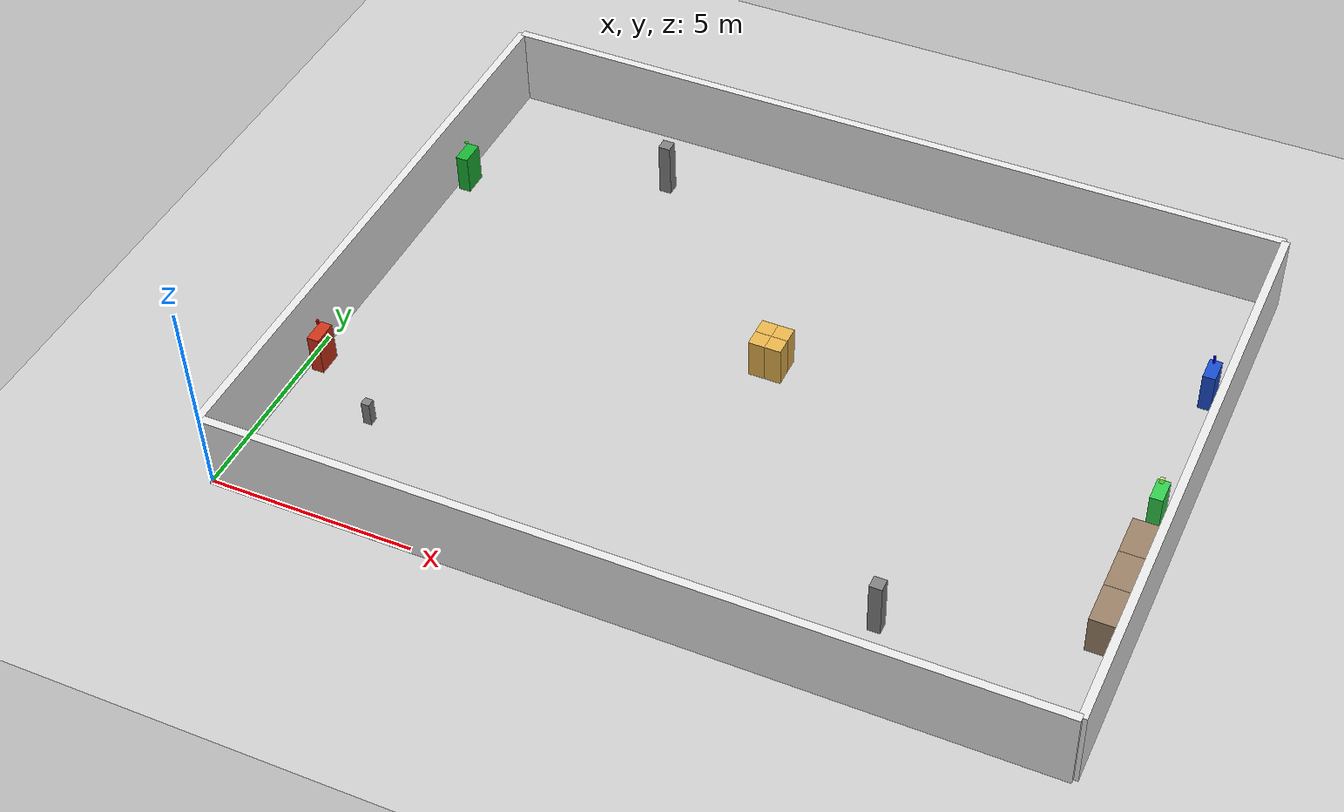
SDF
<?xml version="1.0" ?>
<sdf version="1.6">
  <world name="house">
    <physics type="ode">
      <max_step_size>0.001</max_step_size>
      <real_time_factor>1</real_time_factor>
      <real_time_update_rate>1000</real_time_update_rate>
    </physics>
    <include><uri>model://sun</uri></include>
    <include><uri>model://ground_plane</uri></include>

    <!-- 外围墙壁 20m x 15m -->
    <model name="wall_left">
      <pose>0.0 7.5 1.0 0 0 0</pose>
      <link name="link">
        <visual name="visual"><geometry><box><size>0.2 15.0 2.0</size></box></geometry><material><ambient>0.9 0.9 0.9 1</ambient></material></visual>
        <collision name="collision"><geometry><box><size>0.2 15.0 2.0</size></box></geometry></collision>
        <inertial><mass>500</mass><inertia><ixx>1</ixx><iyy>1</iyy><izz>1</izz></inertia></inertial>
      </link>
      <static>true</static>
    </model>
    <model name="wall_right">
      <pose>20.0 7.5 1.0 0 0 0</pose>
      <link name="link">
        <visual name="visual"><geometry><box><size>0.2 15.0 2.0</size></box></geometry><material><ambient>0.9 0.9 0.9 1</ambient></material></visual>
        <collision name="collision"><geometry><box><size>0.2 15.0 2.0</size></box></geometry></collision>
        <inertial><mass>500</mass><inertia><ixx>1</ixx><iyy>1</iyy><izz>1</izz></inertia></inertial>
      </link>
      <static>true</static>
    </model>
    <model name="wall_top">
      <pose>10.0 15.0 1.0 0 0 0</pose>
      <link name="link">
        <visual name="visual"><geometry><box><size>20.0 0.2 2.0</size></box></geometry><material><ambient>0.9 0.9 0.9 1</ambient></material></visual>
        <collision name="collision"><geometry><box><size>20.0 0.2 2.0</size></box></geometry></collision>
        <inertial><mass>500</mass><inertia><ixx>1</ixx><iyy>1</iyy><izz>1</izz></inertia></inertial>
      </link>
      <static>true</static>
    </model>
    <model name="wall_bottom">
      <pose>10.0 0.0 1.0 0 0 0</pose>
      <link name="link">
        <visual name="visual"><geometry><box><size>20.0 0.2 2.0</size></box></geometry><material><ambient>0.9 0.9 0.9 1</ambient></material></visual>
        <collision name="collision"><geometry><box><size>20.0 0.2 2.0</size></box></geometry></collision>
        <inertial><mass>500</mass><inertia><ixx>1</ixx><iyy>1</iyy><izz>1</izz></inertia></inertial>
      </link>
      <static>true</static>
    </model>

    <!-- ========== 靠墙取物桌 (物体放置处) ========== -->
    <!-- 左墙药品桌 y=4，红色桌面 -->
    <model name="table_left_medicine">
      <pose>0.5 4.0 0.75 0 0 0</pose>
      <link name="link">
        <visual name="visual"><geometry><box><size>0.3 0.6 1.0</size></box></geometry><material><ambient>0.8 0.2 0.1 1</ambient></material></visual>
        <collision name="collision"><geometry><box><size>0.3 0.6 1.0</size></box></geometry></collision>
        <inertial><mass>25</mass><inertia><ixx>0.1</ixx><iyy>0.1</iyy><izz>0.1</izz></inertia></inertial>
      </link>
      <static>true</static>
    </model>
    <model name="medicine">
      <pose>0.5 4.0 1.55 0 0 0</pose>   <!-- 高度从1.45改为1.55 -->
      <link name="link">
        <inertial><mass>0.2</mass><inertia><ixx>0.001</ixx><iyy>0.001</iyy><izz>0.001</izz></inertia></inertial>
        <visual name="visual"><geometry><box><size>0.05 0.05 0.1</size></box></geometry><material><ambient>1 0 0 1</ambient></material></visual>
        <collision name="collision"><geometry><box><size>0.05 0.05 0.1</size></box></geometry></collision>
      </link>
    </model>

    <!-- 右墙水杯桌 y=11，蓝色桌面 -->
    <model name="table_right_water">
      <pose>19.5 11.0 0.75 0 0 3.14159</pose>
      <link name="link">
        <visual name="visual"><geometry><box><size>0.3 0.6 1.0</size></box></geometry><material><ambient>0.1 0.3 0.8 1</ambient></material></visual>
        <collision name="collision"><geometry><box><size>0.3 0.6 1.0</size></box></geometry></collision>
        <inertial><mass>25</mass><inertia><ixx>0.1</ixx><iyy>0.1</iyy><izz>0.1</izz></inertia></inertial>
      </link>
      <static>true</static>
    </model>
    <model name="water">
      <pose>19.5 11.0 1.55 0 0 0</pose>   <!-- 高度从1.45改为1.55 -->
      <link name="link">
        <inertial><mass>0.3</mass><inertia><ixx>0.001</ixx><iyy>0.001</iyy><izz>0.001</izz></inertia></inertial>
        <visual name="visual"><geometry><cylinder><radius>0.03</radius><length>0.2</length></cylinder></geometry><material><ambient>0 0 1 1</ambient></material></visual>
        <collision name="collision"><geometry><cylinder><radius>0.03</radius><length>0.2</length></cylinder></geometry></collision>
      </link>
    </model>

    <!-- 左墙电话桌 y=11，绿色桌面 -->
    <model name="table_left_phone">
      <pose>0.5 11.0 0.75 0 0 0</pose>
      <link name="link">
        <visual name="visual"><geometry><box><size>0.3 0.6 1.0</size></box></geometry><material><ambient>0.1 0.7 0.2 1</ambient></material></visual>
        <collision name="collision"><geometry><box><size>0.3 0.6 1.0</size></box></geometry></collision>
        <inertial><mass>25</mass><inertia><ixx>0.1</ixx><iyy>0.1</iyy><izz>0.1</izz></inertia></inertial>
      </link>
      <static>true</static>
    </model>
    <model name="phone">
      <pose>0.5 11.0 1.55 0 0 0</pose>   <!-- 高度从1.45改为1.55 -->
      <link name="link">
        <inertial><mass>0.15</mass><inertia><ixx>0.0005</ixx><iyy>0.0005</iyy><izz>0.0005</izz></inertia></inertial>
        <visual name="visual"><geometry><box><size>0.08 0.05 0.02</size></box></geometry><material><ambient>0 1 0 1</ambient></material></visual>
        <collision name="collision"><geometry><box><size>0.08 0.05 0.02</size></box></geometry></collision>
      </link>
    </model>

    <!-- ========== 靠墙目标桌 (右墙 y=7，绿色桌面，接收所有物体) ========== -->
    <model name="table_target">
      <pose>19.5 7.0 0.75 0 0 3.14159</pose>
      <link name="link">
        <visual name="visual"><geometry><box><size>0.3 0.6 1.0</size></box></geometry><material><ambient>0.2 0.8 0.3 1</ambient></material></visual>
        <collision name="collision"><geometry><box><size>0.3 0.6 1.0</size></box></geometry></collision>
        <inertial><mass>25</mass><inertia><ixx>0.1</ixx><iyy>0.1</iyy><izz>0.1</izz></inertia></inertial>
      </link>
      <static>true</static>
    </model>
    <!-- 目标方块 (放在此桌面上) -->
    <model name="target_center">
      <pose>19.5 7.0 1.55 0 0 0</pose>   <!-- 高度从1.45改为1.55 -->
      <link name="link">
        <visual name="visual"><geometry><box><size>0.1 0.1 0.1</size></box></geometry><material><ambient>1 1 0 0.3</ambient></material></visual>
        <collision name="collision"><geometry><box><size>0.1 0.1 0.1</size></box></geometry></collision>
        <inertial><mass>0.01</mass><inertia><ixx>0.0001</ixx><iyy>0.0001</iyy><izz>0.0001</izz></inertia></inertial>
      </link>
      <static>true</static>
    </model>

    <!-- ========== 中央障碍桌 (纯障碍，四个方块) ========== -->
    <model name="obstacle_block1">
      <pose>9.8 7.8 0.75 0 0 0</pose>
      <link name="link">
        <visual name="visual"><geometry><box><size>0.4 0.4 1.0</size></box></geometry><material><ambient>0.9 0.7 0.3 1</ambient></material></visual>
        <collision name="collision"><geometry><box><size>0.4 0.4 1.0</size></box></geometry></collision>
        <inertial><mass>10</mass><inertia><ixx>0.1</ixx><iyy>0.1</iyy><izz>0.1</izz></inertia></inertial>
      </link>
      <static>true</static>
    </model>
    <model name="obstacle_block2">
      <pose>10.2 7.8 0.75 0 0 0</pose>
      <link name="link">
        <visual name="visual"><geometry><box><size>0.4 0.4 1.0</size></box></geometry><material><ambient>0.9 0.7 0.3 1</ambient></material></visual>
        <collision name="collision"><geometry><box><size>0.4 0.4 1.0</size></box></geometry></collision>
        <inertial><mass>10</mass><inertia><ixx>0.1</ixx><iyy>0.1</iyy><izz>0.1</izz></inertia></inertial>
      </link>
      <static>true</static>
    </model>
    <model name="obstacle_block3">
      <pose>9.8 8.2 0.75 0 0 0</pose>
      <link name="link">
        <visual name="visual"><geometry><box><size>0.4 0.4 1.0</size></box></geometry><material><ambient>0.9 0.7 0.3 1</ambient></material></visual>
        <collision name="collision"><geometry><box><size>0.4 0.4 1.0</size></box></geometry></collision>
        <inertial><mass>10</mass><inertia><ixx>0.1</ixx><iyy>0.1</iyy><izz>0.1</izz></inertia></inertial>
      </link>
      <static>true</static>
    </model>
    <model name="obstacle_block4">
      <pose>10.2 8.2 0.75 0 0 0</pose>
      <link name="link">
        <visual name="visual"><geometry><box><size>0.4 0.4 1.0</size></box></geometry><material><ambient>0.9 0.7 0.3 1</ambient></material></visual>
        <collision name="collision"><geometry><box><size>0.4 0.4 1.0</size></box></geometry></collision>
        <inertial><mass>10</mass><inertia><ixx>0.1</ixx><iyy>0.1</iyy><izz>0.1</izz></inertia></inertial>
      </link>
      <static>true</static>
    </model>

    <!-- ========== 床 (靠右墙，纯障碍) ========== -->
    <model name="bed_block1">
      <pose>19.5 3.5 0.75 0 0 0</pose>
      <link name="link">
        <visual name="visual"><geometry><box><size>0.6 1.0 1.0</size></box></geometry><material><ambient>0.6 0.5 0.4 1</ambient></material></visual>
        <collision name="collision"><geometry><box><size>0.6 1.0 1.0</size></box></geometry></collision>
        <inertial><mass>20</mass><inertia><ixx>0.1</ixx><iyy>0.1</iyy><izz>0.1</izz></inertia></inertial>
      </link>
      <static>true</static>
    </model>
    <model name="bed_block2">
      <pose>19.5 4.5 0.75 0 0 0</pose>
      <link name="link">
        <visual name="visual"><geometry><box><size>0.6 1.0 1.0</size></box></geometry><material><ambient>0.6 0.5 0.4 1</ambient></material></visual>
        <collision name="collision"><geometry><box><size>0.6 1.0 1.0</size></box></geometry></collision>
        <inertial><mass>20</mass><inertia><ixx>0.1</ixx><iyy>0.1</iyy><izz>0.1</izz></inertia></inertial>
      </link>
      <static>true</static>
    </model>
    <model name="bed_block3">
      <pose>19.5 5.5 0.75 0 0 0</pose>
      <link name="link">
        <visual name="visual"><geometry><box><size>0.6 1.0 1.0</size></box></geometry><material><ambient>0.6 0.5 0.4 1</ambient></material></visual>
        <collision name="collision"><geometry><box><size>0.6 1.0 1.0</size></box></geometry></collision>
        <inertial><mass>20</mass><inertia><ixx>0.1</ixx><iyy>0.1</iyy><izz>0.1</izz></inertia></inertial>
      </link>
      <static>true</static>
    </model>

    <!-- 柱子障碍物 -->
    <model name="pillar1">
      <pose>5.0 13.0 0.75 0 0 0</pose>
      <link name="link">
        <visual name="visual"><geometry><box><size>0.3 0.3 1.4</size></box></geometry><material><ambient>0.5 0.5 0.5 1</ambient></material></visual>
        <collision name="collision"><geometry><box><size>0.3 0.3 1.4</size></box></geometry></collision>
        <inertial><mass>15</mass><inertia><ixx>0.1</ixx><iyy>0.1</iyy><izz>0.1</izz></inertia></inertial>
      </link>
      <static>true</static>
    </model>
    <model name="pillar2">
      <pose>15.0 2.0 0.75 0 0 0</pose>
      <link name="link">
        <visual name="visual"><geometry><box><size>0.3 0.3 1.4</size></box></geometry><material><ambient>0.5 0.5 0.5 1</ambient></material></visual>
        <collision name="collision"><geometry><box><size>0.3 0.3 1.4</size></box></geometry></collision>
        <inertial><mass>15</mass><inertia><ixx>0.1</ixx><iyy>0.1</iyy><izz>0.1</izz></inertia></inertial>
      </link>
      <static>true</static>
    </model>

    <!-- 助行器 (放在左下角，高度1.55m) -->
    <model name="walker">
      <pose>3.0 2.0 1.55 0 0 0</pose>   <!-- 高度从1.45改为1.55 -->
      <link name="link">
        <inertial><mass>2.0</mass><inertia><ixx>0.01</ixx><iyy>0.01</iyy><izz>0.01</izz></inertia></inertial>
        <visual name="visual"><geometry><box><size>0.2 0.2 0.6</size></box></geometry><material><ambient>0.5 0.5 0.5 1</ambient></material></visual>
        <collision name="collision"><geometry><box><size>0.2 0.2 0.6</size></box></geometry></collision>
      </link>
    </model>
  </world>
</sdf>
